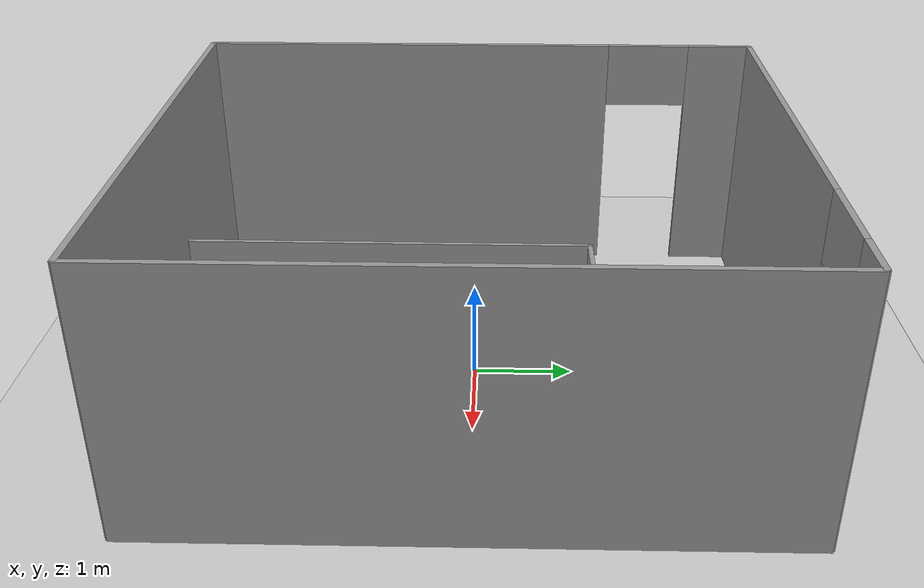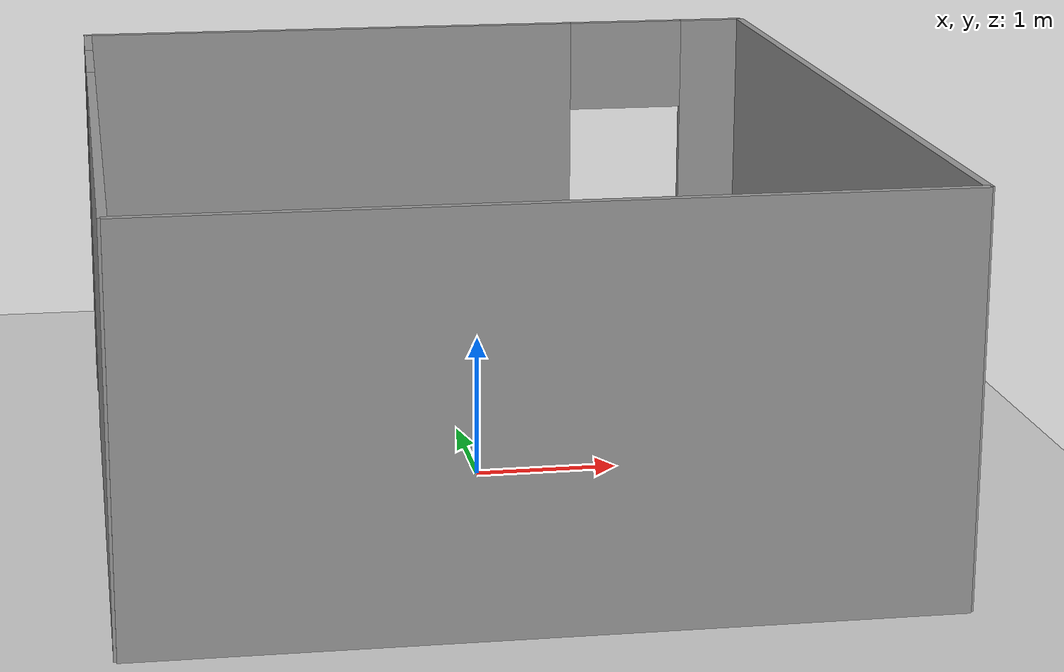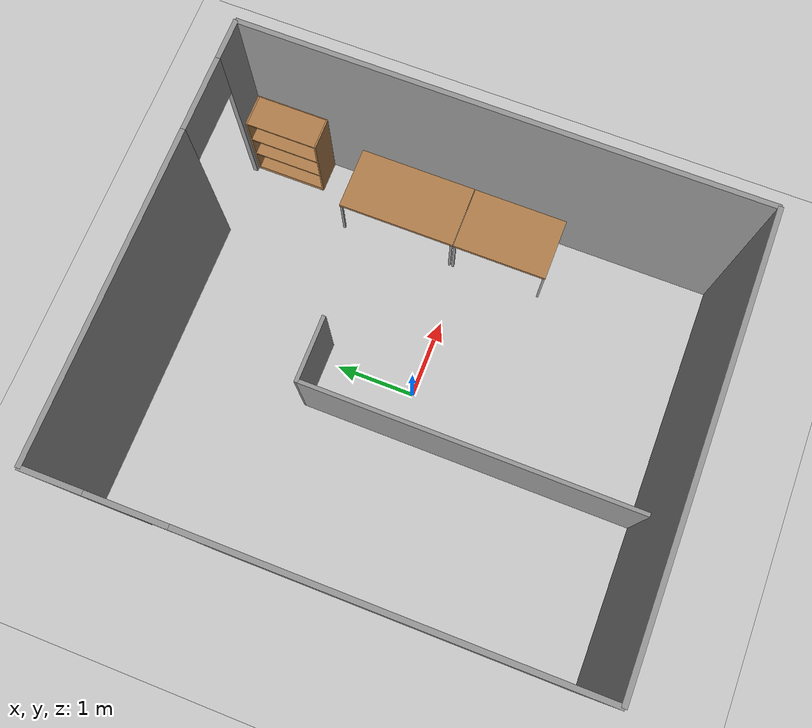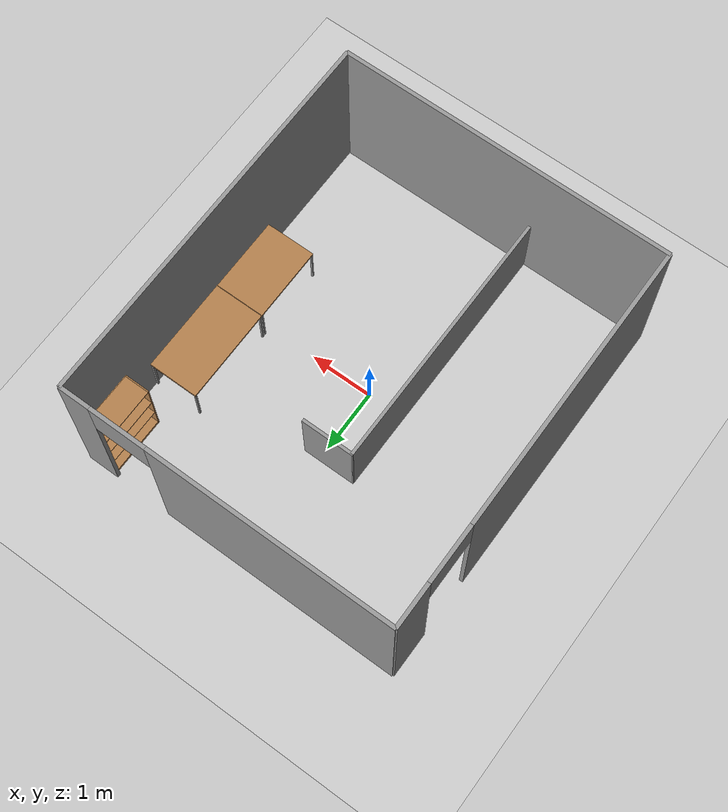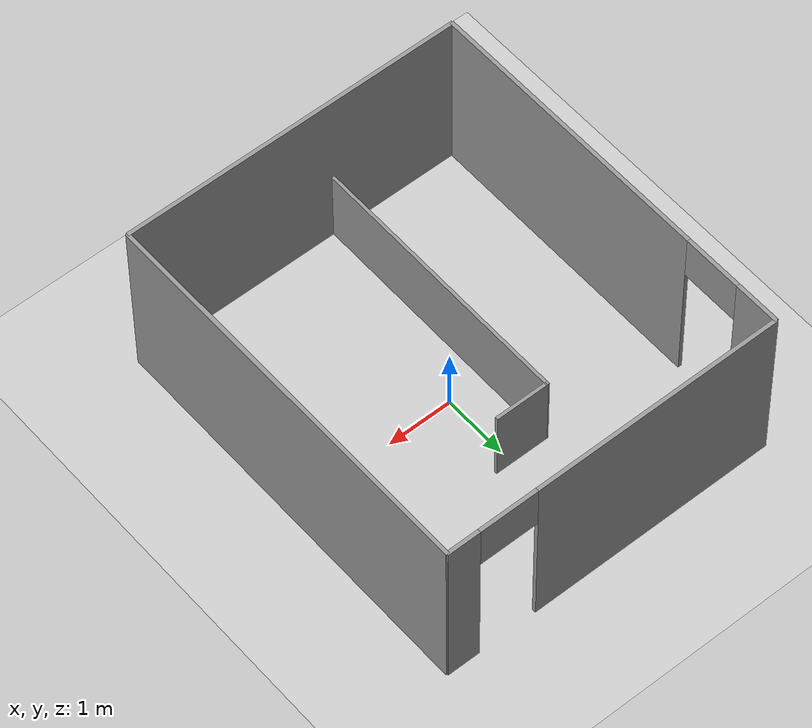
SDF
<sdf version="1.7">
 <world name="default">
  <model name="ground_plane">
   <static>1</static>
   <link name="link">
    <collision name="collision">
     <geometry><plane><normal>0 0 1</normal><size>100 100</size></plane></geometry>
     <surface>
      <contact><collide_bitmask>65535</collide_bitmask></contact>
      <friction><ode><mu>100</mu><mu2>50</mu2></ode></friction>
     </surface>
    </collision>
    <visual name="visual">
     <cast_shadows>0</cast_shadows>
     <geometry><plane><normal>0 0 1</normal><size>100 100</size></plane></geometry>
     <material>
      <script><uri>file://media/materials/scripts/gazebo.material</uri><name>Gazebo/Grey</name></script>
     </material>
    </visual>
   </link>
  </model>
  <model name="bookshelf_0">
   <static>1</static>
   <link name="link">
    <inertial><mass>1</mass></inertial>
    <collision name="back">
     <pose>0 0.005 0.6 0 -0 0</pose>
     <geometry><box><size>0.9 0.01 1.2</size></box></geometry>
    </collision>
    <visual name="visual1">
     <pose>0 0.005 0.6 0 -0 0</pose>
     <geometry><box><size>0.9 0.01 1.2</size></box></geometry>
     <material>
      <script><uri>file://media/materials/scripts/gazebo.material</uri><name>Gazebo/Wood</name></script>
     </material>
    </visual>
    <collision name="left_side">
     <pose>0.45 -0.195 0.6 0 -0 0</pose>
     <geometry><box><size>0.02 0.4 1.2</size></box></geometry>
    </collision>
    <visual name="visual2">
     <pose>0.45 -0.195 0.6 0 -0 0</pose>
     <geometry><box><size>0.02 0.4 1.2</size></box></geometry>
     <material>
      <script><uri>file://media/materials/scripts/gazebo.material</uri><name>Gazebo/Wood</name></script>
     </material>
    </visual>
    <collision name="right_side">
     <pose>-0.45 -0.195 0.6 0 -0 0</pose>
     <geometry><box><size>0.02 0.4 1.2</size></box></geometry>
    </collision>
    <visual name="visual3">
     <pose>-0.45 -0.195 0.6 0 -0 0</pose>
     <geometry><box><size>0.02 0.4 1.2</size></box></geometry>
     <material>
      <script><uri>file://media/materials/scripts/gazebo.material</uri><name>Gazebo/Wood</name></script>
     </material>
    </visual>
    <collision name="bottom">
     <pose>0 -0.195 0.03 0 -0 0</pose>
     <geometry><box><size>0.88 0.4 0.06</size></box></geometry>
    </collision>
    <visual name="visual4">
     <pose>0 -0.195 0.03 0 -0 0</pose>
     <geometry><box><size>0.88 0.4 0.06</size></box></geometry>
     <material>
      <script><uri>file://media/materials/scripts/gazebo.material</uri><name>Gazebo/Wood</name></script>
     </material>
    </visual>
    <collision name="top">
     <pose>0 -0.195 1.19 0 -0 0</pose>
     <geometry><box><size>0.88 0.4 0.02</size></box></geometry>
    </collision>
    <visual name="visual5">
     <pose>0 -0.195 1.19 0 -0 0</pose>
     <geometry><box><size>0.88 0.4 0.02</size></box></geometry>
     <material>
      <script><uri>file://media/materials/scripts/gazebo.material</uri><name>Gazebo/Wood</name></script>
     </material>
    </visual>
    <collision name="low_shelf">
     <pose>0 -0.195 0.43 0 -0 0</pose>
     <geometry><box><size>0.88 0.4 0.02</size></box></geometry>
    </collision>
    <visual name="visual6">
     <pose>0 -0.195 0.43 0 -0 0</pose>
     <geometry><box><size>0.88 0.4 0.02</size></box></geometry>
     <material>
      <script><uri>file://media/materials/scripts/gazebo.material</uri><name>Gazebo/Wood</name></script>
     </material>
    </visual>
    <collision name="high_shelf">
     <pose>0 -0.195 0.8 0 -0 0</pose>
     <geometry><box><size>0.88 0.4 0.02</size></box></geometry>
    </collision>
    <visual name="visual7">
     <pose>0 -0.195 0.8 0 -0 0</pose>
     <geometry><box><size>0.88 0.4 0.02</size></box></geometry>
     <material>
      <script><uri>file://media/materials/scripts/gazebo.material</uri><name>Gazebo/Wood</name></script>
     </material>
    </visual>
   </link>
   <pose>2.56895 2.55244 0 0 0 -1.5707</pose>
  </model>
  <model name="IRAC">
   <link name="Wall_0">
    <pose>-2.61 0.007537 0 0 -0 1.5708</pose>
    <inertial>
     <mass>1</mass>
     <inertia><ixx>1</ixx><ixy>0</ixy><ixz>0</ixz><iyy>1</iyy><iyz>0</iyz><izz>1</izz></inertia>
    </inertial>
    <visual name="Wall_0_Visual_0">
     <pose>-0.79786 0 1.35 0 -0 0</pose>
     <geometry><box><size>4.52428 0.06 2.7</size></box></geometry>
     <material>
      <script><uri>file://media/materials/scripts/gazebo.material</uri><name>Gazebo/Grey</name></script>
      <ambient>1 1 1 1</ambient>
      <shader type="pixel"><normal_map>__default__</normal_map></shader>
      <diffuse>0.7 0.7 0.7 1</diffuse>
      <specular>0.01 0.01 0.01 1</specular>
      <emissive>0 0 0 1</emissive>
     </material>
     <meta><layer>0</layer></meta>
    </visual>
    <visual name="Wall_0_Visual_1">
     <pose>2.71214 0 1.35 0 -0 0</pose>
     <geometry><box><size>0.695721 0.06 2.7</size></box></geometry>
     <material>
      <script><uri>file://media/materials/scripts/gazebo.material</uri><name>Gazebo/Grey</name></script>
      <ambient>1 1 1 1</ambient>
      <shader type="pixel"><normal_map>__default__</normal_map></shader>
      <diffuse>0.7 0.7 0.7 1</diffuse>
      <specular>0.01 0.01 0.01 1</specular>
      <emissive>0 0 0 1</emissive>
     </material>
     <meta><layer>0</layer></meta>
    </visual>
    <visual name="Wall_0_Visual_2">
     <pose>1.91428 0 2.35 0 -0 0</pose>
     <geometry><box><size>0.9 0.06 0.7</size></box></geometry>
     <material>
      <script><uri>file://media/materials/scripts/gazebo.material</uri><name>Gazebo/Grey</name></script>
      <ambient>1 1 1 1</ambient>
      <shader type="pixel"><normal_map>__default__</normal_map></shader>
      <diffuse>0.7 0.7 0.7 1</diffuse>
      <specular>0.01 0.01 0.01 1</specular>
      <emissive>0 0 0 1</emissive>
     </material>
     <meta><layer>0</layer></meta>
    </visual>
    <collision name="Wall_0_Collision_0">
     <pose>-0.79786 0 1.35 0 -0 0</pose>
     <geometry><box><size>4.52428 0.06 2.7</size></box></geometry>
     <surface>
      <friction>
       <ode><mu>1</mu><mu2>1</mu2><fdir1>0 0 0</fdir1><slip1>0</slip1><slip2>0</slip2></ode>
       <torsional>
        <coefficient>1</coefficient>
        <patch_radius>0</patch_radius>
        <surface_radius>0</surface_radius>
        <use_patch_radius>1</use_patch_radius>
        <ode><slip>0</slip></ode>
       </torsional>
      </friction>
      <bounce><restitution_coefficient>0</restitution_coefficient><threshold>1e+06</threshold></bounce>
      <contact>
       <collide_without_contact>0</collide_without_contact>
       <collide_without_contact_bitmask>1</collide_without_contact_bitmask>
       <collide_bitmask>1</collide_bitmask>
       <ode>
        <soft_cfm>0</soft_cfm>
        <soft_erp>0.2</soft_erp>
        <kp>1e+13</kp>
        <kd>1</kd>
        <max_vel>0.01</max_vel>
        <min_depth>0</min_depth>
       </ode>
       <bullet>
        <split_impulse>1</split_impulse>
        <split_impulse_penetration_threshold>-0.01</split_impulse_penetration_threshold>
        <soft_cfm>0</soft_cfm>
        <soft_erp>0.2</soft_erp>
        <kp>1e+13</kp>
        <kd>1</kd>
       </bullet>
      </contact>
     </surface>
    </collision>
    <collision name="Wall_0_Collision_2">
     <pose>1.91428 0 2.35 0 -0 0</pose>
     <geometry><box><size>0.9 0.06 0.7</size></box></geometry>
     <surface>
      <friction>
       <ode><mu>1</mu><mu2>1</mu2><fdir1>0 0 0</fdir1><slip1>0</slip1><slip2>0</slip2></ode>
       <torsional>
        <coefficient>1</coefficient>
        <patch_radius>0</patch_radius>
        <surface_radius>0</surface_radius>
        <use_patch_radius>1</use_patch_radius>
        <ode><slip>0</slip></ode>
       </torsional>
      </friction>
      <bounce><restitution_coefficient>0</restitution_coefficient><threshold>1e+06</threshold></bounce>
      <contact>
       <collide_without_contact>0</collide_without_contact>
       <collide_without_contact_bitmask>1</collide_without_contact_bitmask>
       <collide_bitmask>1</collide_bitmask>
       <ode>
        <soft_cfm>0</soft_cfm>
        <soft_erp>0.2</soft_erp>
        <kp>1e+13</kp>
        <kd>1</kd>
        <max_vel>0.01</max_vel>
        <min_depth>0</min_depth>
       </ode>
       <bullet>
        <split_impulse>1</split_impulse>
        <split_impulse_penetration_threshold>-0.01</split_impulse_penetration_threshold>
        <soft_cfm>0</soft_cfm>
        <soft_erp>0.2</soft_erp>
        <kp>1e+13</kp>
        <kd>1</kd>
       </bullet>
      </contact>
     </surface>
    </collision>
    <collision name="Wall_0_Collision_1">
     <pose>2.71214 0 1.35 0 -0 0</pose>
     <geometry><box><size>0.695721 0.06 2.7</size></box></geometry>
     <surface>
      <friction>
       <ode><mu>1</mu><mu2>1</mu2><fdir1>0 0 0</fdir1><slip1>0</slip1><slip2>0</slip2></ode>
       <torsional>
        <coefficient>1</coefficient>
        <patch_radius>0</patch_radius>
        <surface_radius>0</surface_radius>
        <use_patch_radius>1</use_patch_radius>
        <ode><slip>0</slip></ode>
       </torsional>
      </friction>
      <bounce><restitution_coefficient>0</restitution_coefficient><threshold>1e+06</threshold></bounce>
      <contact>
       <collide_without_contact>0</collide_without_contact>
       <collide_without_contact_bitmask>1</collide_without_contact_bitmask>
       <collide_bitmask>1</collide_bitmask>
       <ode>
        <soft_cfm>0</soft_cfm>
        <soft_erp>0.2</soft_erp>
        <kp>1e+13</kp>
        <kd>1</kd>
        <max_vel>0.01</max_vel>
        <min_depth>0</min_depth>
       </ode>
       <bullet>
        <split_impulse>1</split_impulse>
        <split_impulse_penetration_threshold>-0.01</split_impulse_penetration_threshold>
        <soft_cfm>0</soft_cfm>
        <soft_erp>0.2</soft_erp>
        <kp>1e+13</kp>
        <kd>1</kd>
       </bullet>
      </contact>
     </surface>
    </collision>
   </link>
   <link name="Wall_11">
    <pose>-0.5825 -0.922463 0 0 -0 1.56726</pose>
    <visual name="Wall_11_Visual">
     <pose>0 0 0.6 0 -0 0</pose>
     <geometry><box><size>4.29 0.05 1.2</size></box></geometry>
     <material>
      <script><uri>file://media/materials/scripts/gazebo.material</uri><name>Gazebo/Grey</name></script>
      <ambient>1 1 1 1</ambient>
      <shader type="pixel"/>
     </material>
     <meta><layer>0</layer></meta>
    </visual>
    <collision name="Wall_11_Collision">
     <pose>0 0 0.6 0 -0 0</pose>
     <geometry><box><size>4.29 0.05 1.2</size></box></geometry>
     <surface>
      <friction>
       <ode><mu>1</mu><mu2>1</mu2><fdir1>0 0 0</fdir1><slip1>0</slip1><slip2>0</slip2></ode>
       <torsional>
        <coefficient>1</coefficient>
        <patch_radius>0</patch_radius>
        <surface_radius>0</surface_radius>
        <use_patch_radius>1</use_patch_radius>
        <ode><slip>0</slip></ode>
       </torsional>
      </friction>
      <bounce><restitution_coefficient>0</restitution_coefficient><threshold>1e+06</threshold></bounce>
      <contact>
       <collide_without_contact>0</collide_without_contact>
       <collide_without_contact_bitmask>1</collide_without_contact_bitmask>
       <collide_bitmask>1</collide_bitmask>
       <ode>
        <soft_cfm>0</soft_cfm>
        <soft_erp>0.2</soft_erp>
        <kp>1e+13</kp>
        <kd>1</kd>
        <max_vel>0.01</max_vel>
        <min_depth>0</min_depth>
       </ode>
       <bullet>
        <split_impulse>1</split_impulse>
        <split_impulse_penetration_threshold>-0.01</split_impulse_penetration_threshold>
        <soft_cfm>0</soft_cfm>
        <soft_erp>0.2</soft_erp>
        <kp>1e+13</kp>
        <kd>1</kd>
       </bullet>
      </contact>
     </surface>
    </collision>
   </link>
   <link name="Wall_13">
    <pose>-0.175 1.19754 0 0 -0 0</pose>
    <visual name="Wall_13_Visual">
     <pose>0 0 0.6 0 -0 0</pose>
     <geometry><box><size>0.85 0.05 1.2</size></box></geometry>
     <material>
      <script><uri>file://media/materials/scripts/gazebo.material</uri><name>Gazebo/Grey</name></script>
      <ambient>1 1 1 1</ambient>
      <shader type="pixel"/>
     </material>
     <meta><layer>0</layer></meta>
    </visual>
    <collision name="Wall_13_Collision">
     <pose>0 0 0.6 0 -0 0</pose>
     <geometry><box><size>0.85 0.05 1.2</size></box></geometry>
     <surface>
      <friction>
       <ode><mu>1</mu><mu2>1</mu2><fdir1>0 0 0</fdir1><slip1>0</slip1><slip2>0</slip2></ode>
       <torsional>
        <coefficient>1</coefficient>
        <patch_radius>0</patch_radius>
        <surface_radius>0</surface_radius>
        <use_patch_radius>1</use_patch_radius>
        <ode><slip>0</slip></ode>
       </torsional>
      </friction>
      <bounce><restitution_coefficient>0</restitution_coefficient><threshold>1e+06</threshold></bounce>
      <contact>
       <collide_without_contact>0</collide_without_contact>
       <collide_without_contact_bitmask>1</collide_without_contact_bitmask>
       <collide_bitmask>1</collide_bitmask>
       <ode>
        <soft_cfm>0</soft_cfm>
        <soft_erp>0.2</soft_erp>
        <kp>1e+13</kp>
        <kd>1</kd>
        <max_vel>0.01</max_vel>
        <min_depth>0</min_depth>
       </ode>
       <bullet>
        <split_impulse>1</split_impulse>
        <split_impulse_penetration_threshold>-0.01</split_impulse_penetration_threshold>
        <soft_cfm>0</soft_cfm>
        <soft_erp>0.2</soft_erp>
        <kp>1e+13</kp>
        <kd>1</kd>
       </bullet>
      </contact>
     </surface>
    </collision>
   </link>
   <link name="Wall_2">
    <pose>0 -3.04246 0 0 -0 0</pose>
    <inertial>
     <mass>1</mass>
     <inertia><ixx>1</ixx><ixy>0</ixy><ixz>0</ixz><iyy>1</iyy><iyz>0</iyz><izz>1</izz></inertia>
    </inertial>
    <visual name="Wall_2_Visual">
     <pose>0 0 1.35 0 -0 0</pose>
     <geometry><box><size>5.24 0.06 2.7</size></box></geometry>
     <material>
      <script><uri>file://media/materials/scripts/gazebo.material</uri><name>Gazebo/Grey</name></script>
      <ambient>1 1 1 1</ambient>
      <shader type="pixel"><normal_map>__default__</normal_map></shader>
      <diffuse>0.7 0.7 0.7 1</diffuse>
      <specular>0.01 0.01 0.01 1</specular>
      <emissive>0 0 0 1</emissive>
     </material>
     <meta><layer>0</layer></meta>
    </visual>
    <collision name="Wall_2_Collision">
     <pose>0 0 1.35 0 -0 0</pose>
     <geometry><box><size>5.24 0.06 2.7</size></box></geometry>
     <surface>
      <friction>
       <ode><mu>1</mu><mu2>1</mu2><fdir1>0 0 0</fdir1><slip1>0</slip1><slip2>0</slip2></ode>
       <torsional>
        <coefficient>1</coefficient>
        <patch_radius>0</patch_radius>
        <surface_radius>0</surface_radius>
        <use_patch_radius>1</use_patch_radius>
        <ode><slip>0</slip></ode>
       </torsional>
      </friction>
      <bounce><restitution_coefficient>0</restitution_coefficient><threshold>1e+06</threshold></bounce>
      <contact>
       <collide_without_contact>0</collide_without_contact>
       <collide_without_contact_bitmask>1</collide_without_contact_bitmask>
       <collide_bitmask>1</collide_bitmask>
       <ode>
        <soft_cfm>0</soft_cfm>
        <soft_erp>0.2</soft_erp>
        <kp>1e+13</kp>
        <kd>1</kd>
        <max_vel>0.01</max_vel>
        <min_depth>0</min_depth>
       </ode>
       <bullet>
        <split_impulse>1</split_impulse>
        <split_impulse_penetration_threshold>-0.01</split_impulse_penetration_threshold>
        <soft_cfm>0</soft_cfm>
        <soft_erp>0.2</soft_erp>
        <kp>1e+13</kp>
        <kd>1</kd>
       </bullet>
      </contact>
     </surface>
    </collision>
   </link>
   <link name="Wall_4">
    <pose>2.61 0.007537 0 0 -0 1.5708</pose>
    <inertial>
     <mass>1</mass>
     <inertia><ixx>1</ixx><ixy>0</ixy><ixz>0</ixz><iyy>1</iyy><iyz>0</iyz><izz>1</izz></inertia>
    </inertial>
    <visual name="Wall_4_Visual">
     <pose>0 0 1.35 0 -0 0</pose>
     <geometry><box><size>6.12 0.06 2.7</size></box></geometry>
     <material>
      <script><uri>file://media/materials/scripts/gazebo.material</uri><name>Gazebo/Grey</name></script>
      <ambient>1 1 1 1</ambient>
      <shader type="pixel"><normal_map>__default__</normal_map></shader>
      <diffuse>0.7 0.7 0.7 1</diffuse>
      <specular>0.01 0.01 0.01 1</specular>
      <emissive>0 0 0 1</emissive>
     </material>
     <meta><layer>0</layer></meta>
    </visual>
    <collision name="Wall_4_Collision">
     <pose>0 0 1.35 0 -0 0</pose>
     <geometry><box><size>6.12 0.06 2.7</size></box></geometry>
     <surface>
      <friction>
       <ode><mu>1</mu><mu2>1</mu2><fdir1>0 0 0</fdir1><slip1>0</slip1><slip2>0</slip2></ode>
       <torsional>
        <coefficient>1</coefficient>
        <patch_radius>0</patch_radius>
        <surface_radius>0</surface_radius>
        <use_patch_radius>1</use_patch_radius>
        <ode><slip>0</slip></ode>
       </torsional>
      </friction>
      <bounce><restitution_coefficient>0</restitution_coefficient><threshold>1e+06</threshold></bounce>
      <contact>
       <collide_without_contact>0</collide_without_contact>
       <collide_without_contact_bitmask>1</collide_without_contact_bitmask>
       <collide_bitmask>1</collide_bitmask>
       <ode>
        <soft_cfm>0</soft_cfm>
        <soft_erp>0.2</soft_erp>
        <kp>1e+13</kp>
        <kd>1</kd>
        <max_vel>0.01</max_vel>
        <min_depth>0</min_depth>
       </ode>
       <bullet>
        <split_impulse>1</split_impulse>
        <split_impulse_penetration_threshold>-0.01</split_impulse_penetration_threshold>
        <soft_cfm>0</soft_cfm>
        <soft_erp>0.2</soft_erp>
        <kp>1e+13</kp>
        <kd>1</kd>
       </bullet>
      </contact>
     </surface>
    </collision>
   </link>
   <link name="Wall_9">
    <pose>0 3.05754 0 0 -0 0</pose>
    <inertial>
     <mass>1</mass>
     <inertia><ixx>1</ixx><ixy>0</ixy><ixz>0</ixz><iyy>1</iyy><iyz>0</iyz><izz>1</izz></inertia>
    </inertial>
    <visual name="Wall_9_Visual_0">
     <pose>-0.699649 0 1.35 0 -0 0</pose>
     <geometry><box><size>3.8407 0.06 2.7</size></box></geometry>
     <material>
      <script><uri>file://media/materials/scripts/gazebo.material</uri><name>Gazebo/Grey</name></script>
      <ambient>1 1 1 1</ambient>
      <shader type="pixel"><normal_map>__default__</normal_map></shader>
      <diffuse>0.7 0.7 0.7 1</diffuse>
      <specular>0.01 0.01 0.01 1</specular>
      <emissive>0 0 0 1</emissive>
     </material>
     <meta><layer>0</layer></meta>
    </visual>
    <visual name="Wall_9_Visual_1">
     <pose>2.37035 0 1.35 0 -0 0</pose>
     <geometry><box><size>0.499297 0.06 2.7</size></box></geometry>
     <material>
      <script><uri>file://media/materials/scripts/gazebo.material</uri><name>Gazebo/Grey</name></script>
      <ambient>1 1 1 1</ambient>
      <shader type="pixel"><normal_map>__default__</normal_map></shader>
      <diffuse>0.7 0.7 0.7 1</diffuse>
      <specular>0.01 0.01 0.01 1</specular>
      <emissive>0 0 0 1</emissive>
     </material>
     <meta><layer>0</layer></meta>
    </visual>
    <visual name="Wall_9_Visual_2">
     <pose>1.6707 0 2.35 0 -0 0</pose>
     <geometry><box><size>0.9 0.06 0.7</size></box></geometry>
     <material>
      <script><uri>file://media/materials/scripts/gazebo.material</uri><name>Gazebo/Grey</name></script>
      <ambient>1 1 1 1</ambient>
      <shader type="pixel"><normal_map>__default__</normal_map></shader>
      <diffuse>0.7 0.7 0.7 1</diffuse>
      <specular>0.01 0.01 0.01 1</specular>
      <emissive>0 0 0 1</emissive>
     </material>
     <meta><layer>0</layer></meta>
    </visual>
    <collision name="Wall_9_Collision_0">
     <pose>-0.699649 0 1.35 0 -0 0</pose>
     <geometry><box><size>3.8407 0.06 2.7</size></box></geometry>
     <surface>
      <friction>
       <ode><mu>1</mu><mu2>1</mu2><fdir1>0 0 0</fdir1><slip1>0</slip1><slip2>0</slip2></ode>
       <torsional>
        <coefficient>1</coefficient>
        <patch_radius>0</patch_radius>
        <surface_radius>0</surface_radius>
        <use_patch_radius>1</use_patch_radius>
        <ode><slip>0</slip></ode>
       </torsional>
      </friction>
      <bounce><restitution_coefficient>0</restitution_coefficient><threshold>1e+06</threshold></bounce>
      <contact>
       <collide_without_contact>0</collide_without_contact>
       <collide_without_contact_bitmask>1</collide_without_contact_bitmask>
       <collide_bitmask>1</collide_bitmask>
       <ode>
        <soft_cfm>0</soft_cfm>
        <soft_erp>0.2</soft_erp>
        <kp>1e+13</kp>
        <kd>1</kd>
        <max_vel>0.01</max_vel>
        <min_depth>0</min_depth>
       </ode>
       <bullet>
        <split_impulse>1</split_impulse>
        <split_impulse_penetration_threshold>-0.01</split_impulse_penetration_threshold>
        <soft_cfm>0</soft_cfm>
        <soft_erp>0.2</soft_erp>
        <kp>1e+13</kp>
        <kd>1</kd>
       </bullet>
      </contact>
     </surface>
    </collision>
    <collision name="Wall_9_Collision_1">
     <pose>2.37035 0 1.35 0 -0 0</pose>
     <geometry><box><size>0.499297 0.06 2.7</size></box></geometry>
     <surface>
      <friction>
       <ode><mu>1</mu><mu2>1</mu2><fdir1>0 0 0</fdir1><slip1>0</slip1><slip2>0</slip2></ode>
       <torsional>
        <coefficient>1</coefficient>
        <patch_radius>0</patch_radius>
        <surface_radius>0</surface_radius>
        <use_patch_radius>1</use_patch_radius>
        <ode><slip>0</slip></ode>
       </torsional>
      </friction>
      <bounce><restitution_coefficient>0</restitution_coefficient><threshold>1e+06</threshold></bounce>
      <contact>
       <collide_without_contact>0</collide_without_contact>
       <collide_without_contact_bitmask>1</collide_without_contact_bitmask>
       <collide_bitmask>1</collide_bitmask>
       <ode>
        <soft_cfm>0</soft_cfm>
        <soft_erp>0.2</soft_erp>
        <kp>1e+13</kp>
        <kd>1</kd>
        <max_vel>0.01</max_vel>
        <min_depth>0</min_depth>
       </ode>
       <bullet>
        <split_impulse>1</split_impulse>
        <split_impulse_penetration_threshold>-0.01</split_impulse_penetration_threshold>
        <soft_cfm>0</soft_cfm>
        <soft_erp>0.2</soft_erp>
        <kp>1e+13</kp>
        <kd>1</kd>
       </bullet>
      </contact>
     </surface>
    </collision>
    <collision name="Wall_9_Collision_2">
     <pose>1.6707 0 2.35 0 -0 0</pose>
     <geometry><box><size>0.9 0.06 0.7</size></box></geometry>
     <surface>
      <friction>
       <ode><mu>1</mu><mu2>1</mu2><fdir1>0 0 0</fdir1><slip1>0</slip1><slip2>0</slip2></ode>
       <torsional>
        <coefficient>1</coefficient>
        <patch_radius>0</patch_radius>
        <surface_radius>0</surface_radius>
        <use_patch_radius>1</use_patch_radius>
        <ode><slip>0</slip></ode>
       </torsional>
      </friction>
      <bounce><restitution_coefficient>0</restitution_coefficient><threshold>1e+06</threshold></bounce>
      <contact>
       <collide_without_contact>0</collide_without_contact>
       <collide_without_contact_bitmask>1</collide_without_contact_bitmask>
       <collide_bitmask>1</collide_bitmask>
       <ode>
        <soft_cfm>0</soft_cfm>
        <soft_erp>0.2</soft_erp>
        <kp>1e+13</kp>
        <kd>1</kd>
        <max_vel>0.01</max_vel>
        <min_depth>0</min_depth>
       </ode>
       <bullet>
        <split_impulse>1</split_impulse>
        <split_impulse_penetration_threshold>-0.01</split_impulse_penetration_threshold>
        <soft_cfm>0</soft_cfm>
        <soft_erp>0.2</soft_erp>
        <kp>1e+13</kp>
        <kd>1</kd>
       </bullet>
      </contact>
     </surface>
    </collision>
   </link>
   <static>1</static>
   <pose>0 -0.007537 0 0 -0 0</pose>
  </model>
  <model name="table_short_clone_clone_0">
   <link name="link">
    <inertial>
     <mass>1</mass>
     <inertia><ixx>1</ixx><ixy>0</ixy><ixz>0</ixz><iyy>1</iyy><iyz>0</iyz><izz>1</izz></inertia>
    </inertial>
    <visual name="front_right_leg">
     <pose>0.58 -0.38 0.35 0 -0 0</pose>
     <geometry><box><size>0.03 0.03 0.7</size></box></geometry>
     <material>
      <script><uri>file://media/materials/scripts/gazebo.material</uri><name>Gazebo/Grey</name></script>
      <shader type="pixel"><normal_map>__default__</normal_map></shader>
      <ambient>0.3 0.3 0.3 1</ambient>
      <diffuse>0.7 0.7 0.7 1</diffuse>
      <specular>0.01 0.01 0.01 1</specular>
      <emissive>0 0 0 1</emissive>
     </material>
    </visual>
    <visual name="back_left_leg">
     <pose>-0.58 0.38 0.35 0 -0 0</pose>
     <geometry><box><size>0.03 0.03 0.7</size></box></geometry>
     <material>
      <script><uri>file://media/materials/scripts/gazebo.material</uri><name>Gazebo/Grey</name></script>
      <shader type="pixel"><normal_map>__default__</normal_map></shader>
      <ambient>0.3 0.3 0.3 1</ambient>
      <diffuse>0.7 0.7 0.7 1</diffuse>
      <specular>0.01 0.01 0.01 1</specular>
      <emissive>0 0 0 1</emissive>
     </material>
    </visual>
    <visual name="front_left_leg">
     <pose>0.58 0.38 0.35 0 -0 0</pose>
     <geometry><box><size>0.03 0.03 0.7</size></box></geometry>
     <material>
      <script><uri>file://media/materials/scripts/gazebo.material</uri><name>Gazebo/Grey</name></script>
      <shader type="pixel"><normal_map>__default__</normal_map></shader>
      <ambient>0.3 0.3 0.3 1</ambient>
      <diffuse>0.7 0.7 0.7 1</diffuse>
      <specular>0.01 0.01 0.01 1</specular>
      <emissive>0 0 0 1</emissive>
     </material>
    </visual>
    <visual name="back_right_leg">
     <pose>-0.58 -0.38 0.35 0 -0 0</pose>
     <geometry><box><size>0.03 0.03 0.7</size></box></geometry>
     <material>
      <script><uri>file://media/materials/scripts/gazebo.material</uri><name>Gazebo/Grey</name></script>
      <shader type="pixel"><normal_map>__default__</normal_map></shader>
      <ambient>0.3 0.3 0.3 1</ambient>
      <diffuse>0.7 0.7 0.7 1</diffuse>
      <specular>0.01 0.01 0.01 1</specular>
      <emissive>0 0 0 1</emissive>
     </material>
    </visual>
    <visual name="visual1">
     <pose>0 0 0.7 0 -0 0</pose>
     <geometry><box><size>1.2 0.8 0.04</size></box></geometry>
     <material>
      <script><uri>file://media/materials/scripts/gazebo.material</uri><name>Gazebo/Wood</name></script>
      <shader type="pixel"><normal_map>__default__</normal_map></shader>
      <ambient>1 1 1 1</ambient>
      <diffuse>1 1 1 1</diffuse>
      <specular>0.2 0.2 0.2 1</specular>
      <emissive>0 0 0 1</emissive>
     </material>
    </visual>
    <collision name="front_right_leg">
     <pose>0.58 -0.38 0.35 0 -0 0</pose>
     <geometry><box><size>0.03 0.03 0.7</size></box></geometry>
     <surface>
      <friction>
       <ode><mu>1</mu><mu2>1</mu2><fdir1>0 0 0</fdir1><slip1>0</slip1><slip2>0</slip2></ode>
       <torsional>
        <coefficient>1</coefficient>
        <patch_radius>0</patch_radius>
        <surface_radius>0</surface_radius>
        <use_patch_radius>1</use_patch_radius>
        <ode><slip>0</slip></ode>
       </torsional>
      </friction>
      <bounce><restitution_coefficient>0</restitution_coefficient><threshold>1e+06</threshold></bounce>
      <contact>
       <collide_without_contact>0</collide_without_contact>
       <collide_without_contact_bitmask>1</collide_without_contact_bitmask>
       <collide_bitmask>1</collide_bitmask>
       <ode>
        <soft_cfm>0</soft_cfm>
        <soft_erp>0.2</soft_erp>
        <kp>1e+13</kp>
        <kd>1</kd>
        <max_vel>0.01</max_vel>
        <min_depth>0</min_depth>
       </ode>
       <bullet>
        <split_impulse>1</split_impulse>
        <split_impulse_penetration_threshold>-0.01</split_impulse_penetration_threshold>
        <soft_cfm>0</soft_cfm>
        <soft_erp>0.2</soft_erp>
        <kp>1e+13</kp>
        <kd>1</kd>
       </bullet>
      </contact>
     </surface>
    </collision>
    <collision name="back_left_leg">
     <pose>-0.58 0.38 0.35 0 -0 0</pose>
     <geometry><box><size>0.03 0.03 0.7</size></box></geometry>
     <surface>
      <friction>
       <ode><mu>1</mu><mu2>1</mu2><fdir1>0 0 0</fdir1><slip1>0</slip1><slip2>0</slip2></ode>
       <torsional>
        <coefficient>1</coefficient>
        <patch_radius>0</patch_radius>
        <surface_radius>0</surface_radius>
        <use_patch_radius>1</use_patch_radius>
        <ode><slip>0</slip></ode>
       </torsional>
      </friction>
      <bounce><restitution_coefficient>0</restitution_coefficient><threshold>1e+06</threshold></bounce>
      <contact>
       <collide_without_contact>0</collide_without_contact>
       <collide_without_contact_bitmask>1</collide_without_contact_bitmask>
       <collide_bitmask>1</collide_bitmask>
       <ode>
        <soft_cfm>0</soft_cfm>
        <soft_erp>0.2</soft_erp>
        <kp>1e+13</kp>
        <kd>1</kd>
        <max_vel>0.01</max_vel>
        <min_depth>0</min_depth>
       </ode>
       <bullet>
        <split_impulse>1</split_impulse>
        <split_impulse_penetration_threshold>-0.01</split_impulse_penetration_threshold>
        <soft_cfm>0</soft_cfm>
        <soft_erp>0.2</soft_erp>
        <kp>1e+13</kp>
        <kd>1</kd>
       </bullet>
      </contact>
     </surface>
    </collision>
    <collision name="back_right_leg">
     <pose>-0.58 -0.38 0.35 0 -0 0</pose>
     <geometry><box><size>0.03 0.03 0.7</size></box></geometry>
     <surface>
      <friction>
       <ode><mu>1</mu><mu2>1</mu2><fdir1>0 0 0</fdir1><slip1>0</slip1><slip2>0</slip2></ode>
       <torsional>
        <coefficient>1</coefficient>
        <patch_radius>0</patch_radius>
        <surface_radius>0</surface_radius>
        <use_patch_radius>1</use_patch_radius>
        <ode><slip>0</slip></ode>
       </torsional>
      </friction>
      <bounce><restitution_coefficient>0</restitution_coefficient><threshold>1e+06</threshold></bounce>
      <contact>
       <collide_without_contact>0</collide_without_contact>
       <collide_without_contact_bitmask>1</collide_without_contact_bitmask>
       <collide_bitmask>1</collide_bitmask>
       <ode>
        <soft_cfm>0</soft_cfm>
        <soft_erp>0.2</soft_erp>
        <kp>1e+13</kp>
        <kd>1</kd>
        <max_vel>0.01</max_vel>
        <min_depth>0</min_depth>
       </ode>
       <bullet>
        <split_impulse>1</split_impulse>
        <split_impulse_penetration_threshold>-0.01</split_impulse_penetration_threshold>
        <soft_cfm>0</soft_cfm>
        <soft_erp>0.2</soft_erp>
        <kp>1e+13</kp>
        <kd>1</kd>
       </bullet>
      </contact>
     </surface>
    </collision>
    <collision name="surface">
     <pose>0 0 0.7 0 -0 0</pose>
     <geometry><box><size>1.2 0.8 0.04</size></box></geometry>
     <surface>
      <friction>
       <ode><mu>0.6</mu><mu2>0.6</mu2><fdir1>0 0 0</fdir1><slip1>0</slip1><slip2>0</slip2></ode>
       <torsional>
        <coefficient>1</coefficient>
        <patch_radius>0</patch_radius>
        <surface_radius>0</surface_radius>
        <use_patch_radius>1</use_patch_radius>
        <ode><slip>0</slip></ode>
       </torsional>
      </friction>
      <bounce><restitution_coefficient>0</restitution_coefficient><threshold>1e+06</threshold></bounce>
      <contact>
       <collide_without_contact>0</collide_without_contact>
       <collide_without_contact_bitmask>1</collide_without_contact_bitmask>
       <collide_bitmask>1</collide_bitmask>
       <ode>
        <soft_cfm>0</soft_cfm>
        <soft_erp>0.2</soft_erp>
        <kp>1e+13</kp>
        <kd>1</kd>
        <max_vel>0.01</max_vel>
        <min_depth>0</min_depth>
       </ode>
       <bullet>
        <split_impulse>1</split_impulse>
        <split_impulse_penetration_threshold>-0.01</split_impulse_penetration_threshold>
        <soft_cfm>0</soft_cfm>
        <soft_erp>0.2</soft_erp>
        <kp>1e+13</kp>
        <kd>1</kd>
       </bullet>
      </contact>
     </surface>
    </collision>
    <collision name="front_left_leg">
     <pose>0.58 0.38 0.35 0 -0 0</pose>
     <geometry><box><size>0.03 0.03 0.699999</size></box></geometry>
     <surface>
      <friction>
       <ode><mu>1</mu><mu2>1</mu2><fdir1>0 0 0</fdir1><slip1>0</slip1><slip2>0</slip2></ode>
       <torsional>
        <coefficient>1</coefficient>
        <patch_radius>0</patch_radius>
        <surface_radius>0</surface_radius>
        <use_patch_radius>1</use_patch_radius>
        <ode><slip>0</slip></ode>
       </torsional>
      </friction>
      <bounce><restitution_coefficient>0</restitution_coefficient><threshold>1e+06</threshold></bounce>
      <contact>
       <collide_without_contact>0</collide_without_contact>
       <collide_without_contact_bitmask>1</collide_without_contact_bitmask>
       <collide_bitmask>1</collide_bitmask>
       <ode>
        <soft_cfm>0</soft_cfm>
        <soft_erp>0.2</soft_erp>
        <kp>1e+13</kp>
        <kd>1</kd>
        <max_vel>0.01</max_vel>
        <min_depth>0</min_depth>
       </ode>
       <bullet>
        <split_impulse>1</split_impulse>
        <split_impulse_penetration_threshold>-0.01</split_impulse_penetration_threshold>
        <soft_cfm>0</soft_cfm>
        <soft_erp>0.2</soft_erp>
        <kp>1e+13</kp>
        <kd>1</kd>
       </bullet>
      </contact>
     </surface>
    </collision>
   </link>
   <static>1</static>
   <pose>2.1757 -0.449844 0 0 -0 1.57</pose>
  </model>
  <model name="table_long_clone_clone_0">
   <link name="link">
    <inertial>
     <mass>1</mass>
     <inertia><ixx>1</ixx><ixy>0</ixy><ixz>0</ixz><iyy>1</iyy><iyz>0</iyz><izz>1</izz></inertia>
    </inertial>
    <visual name="front_left_leg">
     <pose>0.73 0.38 0.35 0 -0 0</pose>
     <geometry><box><size>0.03 0.03 0.7</size></box></geometry>
     <material>
      <script><uri>file://media/materials/scripts/gazebo.material</uri><name>Gazebo/Grey</name></script>
      <shader type="pixel"><normal_map>__default__</normal_map></shader>
      <ambient>0.3 0.3 0.3 1</ambient>
      <diffuse>0.7 0.7 0.7 1</diffuse>
      <specular>0.01 0.01 0.01 1</specular>
      <emissive>0 0 0 1</emissive>
     </material>
    </visual>
    <visual name="front_right_leg">
     <pose>0.73 -0.38 0.35 0 -0 0</pose>
     <geometry><box><size>0.03 0.03 0.7</size></box></geometry>
     <material>
      <script><uri>file://media/materials/scripts/gazebo.material</uri><name>Gazebo/Grey</name></script>
      <shader type="pixel"><normal_map>__default__</normal_map></shader>
      <ambient>0.3 0.3 0.3 1</ambient>
      <diffuse>0.7 0.7 0.7 1</diffuse>
      <specular>0.01 0.01 0.01 1</specular>
      <emissive>0 0 0 1</emissive>
     </material>
    </visual>
    <visual name="visual1">
     <pose>0 0 0.7 0 -0 0</pose>
     <geometry><box><size>1.5 0.8 0.04</size></box></geometry>
     <material>
      <script><uri>file://media/materials/scripts/gazebo.material</uri><name>Gazebo/Wood</name></script>
      <shader type="pixel"><normal_map>__default__</normal_map></shader>
      <ambient>1 1 1 1</ambient>
      <diffuse>1 1 1 1</diffuse>
      <specular>0.2 0.2 0.2 1</specular>
      <emissive>0 0 0 1</emissive>
     </material>
    </visual>
    <visual name="back_right_leg">
     <pose>-0.73 -0.38 0.35 0 -0 0</pose>
     <geometry><box><size>0.03 0.03 0.7</size></box></geometry>
     <material>
      <script><uri>file://media/materials/scripts/gazebo.material</uri><name>Gazebo/Grey</name></script>
      <shader type="pixel"><normal_map>__default__</normal_map></shader>
      <ambient>0.3 0.3 0.3 1</ambient>
      <diffuse>0.7 0.7 0.7 1</diffuse>
      <specular>0.01 0.01 0.01 1</specular>
      <emissive>0 0 0 1</emissive>
     </material>
    </visual>
    <visual name="back_left_leg">
     <pose>-0.73 0.38 0.35 0 -0 0</pose>
     <geometry><box><size>0.03 0.03 0.7</size></box></geometry>
     <material>
      <script><uri>file://media/materials/scripts/gazebo.material</uri><name>Gazebo/Grey</name></script>
      <shader type="pixel"><normal_map>__default__</normal_map></shader>
      <ambient>0.3 0.3 0.3 1</ambient>
      <diffuse>0.7 0.7 0.7 1</diffuse>
      <specular>0.01 0.01 0.01 1</specular>
      <emissive>0 0 0 1</emissive>
     </material>
    </visual>
    <collision name="front_right_leg">
     <pose>0.73 -0.38 0.35 0 -0 0</pose>
     <geometry><box><size>0.03 0.03 0.7</size></box></geometry>
     <surface>
      <friction>
       <ode><mu>1</mu><mu2>1</mu2><fdir1>0 0 0</fdir1><slip1>0</slip1><slip2>0</slip2></ode>
       <torsional>
        <coefficient>1</coefficient>
        <patch_radius>0</patch_radius>
        <surface_radius>0</surface_radius>
        <use_patch_radius>1</use_patch_radius>
        <ode><slip>0</slip></ode>
       </torsional>
      </friction>
      <bounce><restitution_coefficient>0</restitution_coefficient><threshold>1e+06</threshold></bounce>
      <contact>
       <collide_without_contact>0</collide_without_contact>
       <collide_without_contact_bitmask>1</collide_without_contact_bitmask>
       <collide_bitmask>1</collide_bitmask>
       <ode>
        <soft_cfm>0</soft_cfm>
        <soft_erp>0.2</soft_erp>
        <kp>1e+13</kp>
        <kd>1</kd>
        <max_vel>0.01</max_vel>
        <min_depth>0</min_depth>
       </ode>
       <bullet>
        <split_impulse>1</split_impulse>
        <split_impulse_penetration_threshold>-0.01</split_impulse_penetration_threshold>
        <soft_cfm>0</soft_cfm>
        <soft_erp>0.2</soft_erp>
        <kp>1e+13</kp>
        <kd>1</kd>
       </bullet>
      </contact>
     </surface>
    </collision>
    <collision name="front_left_leg">
     <pose>0.73 0.38 0.35 0 -0 0</pose>
     <geometry><box><size>0.03 0.03 0.699999</size></box></geometry>
     <surface>
      <friction>
       <ode><mu>1</mu><mu2>1</mu2><fdir1>0 0 0</fdir1><slip1>0</slip1><slip2>0</slip2></ode>
       <torsional>
        <coefficient>1</coefficient>
        <patch_radius>0</patch_radius>
        <surface_radius>0</surface_radius>
        <use_patch_radius>1</use_patch_radius>
        <ode><slip>0</slip></ode>
       </torsional>
      </friction>
      <bounce><restitution_coefficient>0</restitution_coefficient><threshold>1e+06</threshold></bounce>
      <contact>
       <collide_without_contact>0</collide_without_contact>
       <collide_without_contact_bitmask>1</collide_without_contact_bitmask>
       <collide_bitmask>1</collide_bitmask>
       <ode>
        <soft_cfm>0</soft_cfm>
        <soft_erp>0.2</soft_erp>
        <kp>1e+13</kp>
        <kd>1</kd>
        <max_vel>0.01</max_vel>
        <min_depth>0</min_depth>
       </ode>
       <bullet>
        <split_impulse>1</split_impulse>
        <split_impulse_penetration_threshold>-0.01</split_impulse_penetration_threshold>
        <soft_cfm>0</soft_cfm>
        <soft_erp>0.2</soft_erp>
        <kp>1e+13</kp>
        <kd>1</kd>
       </bullet>
      </contact>
     </surface>
    </collision>
    <collision name="back_right_leg">
     <pose>-0.73 -0.38 0.35 0 -0 0</pose>
     <geometry><box><size>0.03 0.03 0.7</size></box></geometry>
     <surface>
      <friction>
       <ode><mu>1</mu><mu2>1</mu2><fdir1>0 0 0</fdir1><slip1>0</slip1><slip2>0</slip2></ode>
       <torsional>
        <coefficient>1</coefficient>
        <patch_radius>0</patch_radius>
        <surface_radius>0</surface_radius>
        <use_patch_radius>1</use_patch_radius>
        <ode><slip>0</slip></ode>
       </torsional>
      </friction>
      <bounce><restitution_coefficient>0</restitution_coefficient><threshold>1e+06</threshold></bounce>
      <contact>
       <collide_without_contact>0</collide_without_contact>
       <collide_without_contact_bitmask>1</collide_without_contact_bitmask>
       <collide_bitmask>1</collide_bitmask>
       <ode>
        <soft_cfm>0</soft_cfm>
        <soft_erp>0.2</soft_erp>
        <kp>1e+13</kp>
        <kd>1</kd>
        <max_vel>0.01</max_vel>
        <min_depth>0</min_depth>
       </ode>
       <bullet>
        <split_impulse>1</split_impulse>
        <split_impulse_penetration_threshold>-0.01</split_impulse_penetration_threshold>
        <soft_cfm>0</soft_cfm>
        <soft_erp>0.2</soft_erp>
        <kp>1e+13</kp>
        <kd>1</kd>
       </bullet>
      </contact>
     </surface>
    </collision>
    <collision name="surface">
     <pose>0 0 0.7 0 -0 0</pose>
     <geometry><box><size>1.5 0.8 0.04</size></box></geometry>
     <surface>
      <friction>
       <ode><mu>0.6</mu><mu2>0.6</mu2><fdir1>0 0 0</fdir1><slip1>0</slip1><slip2>0</slip2></ode>
       <torsional>
        <coefficient>1</coefficient>
        <patch_radius>0</patch_radius>
        <surface_radius>0</surface_radius>
        <use_patch_radius>1</use_patch_radius>
        <ode><slip>0</slip></ode>
       </torsional>
      </friction>
      <bounce><restitution_coefficient>0</restitution_coefficient><threshold>1e+06</threshold></bounce>
      <contact>
       <collide_without_contact>0</collide_without_contact>
       <collide_without_contact_bitmask>1</collide_without_contact_bitmask>
       <collide_bitmask>1</collide_bitmask>
       <ode>
        <soft_cfm>0</soft_cfm>
        <soft_erp>0.2</soft_erp>
        <kp>1e+13</kp>
        <kd>1</kd>
        <max_vel>0.01</max_vel>
        <min_depth>0</min_depth>
       </ode>
       <bullet>
        <split_impulse>1</split_impulse>
        <split_impulse_penetration_threshold>-0.01</split_impulse_penetration_threshold>
        <soft_cfm>0</soft_cfm>
        <soft_erp>0.2</soft_erp>
        <kp>1e+13</kp>
        <kd>1</kd>
       </bullet>
      </contact>
     </surface>
    </collision>
    <collision name="back_left_leg">
     <pose>-0.73 0.38 0.35 0 -0 0</pose>
     <geometry><box><size>0.03 0.03 0.7</size></box></geometry>
     <surface>
      <friction>
       <ode><mu>1</mu><mu2>1</mu2><fdir1>0 0 0</fdir1><slip1>0</slip1><slip2>0</slip2></ode>
       <torsional>
        <coefficient>1</coefficient>
        <patch_radius>0</patch_radius>
        <surface_radius>0</surface_radius>
        <use_patch_radius>1</use_patch_radius>
        <ode><slip>0</slip></ode>
       </torsional>
      </friction>
      <bounce><restitution_coefficient>0</restitution_coefficient><threshold>1e+06</threshold></bounce>
      <contact>
       <collide_without_contact>0</collide_without_contact>
       <collide_without_contact_bitmask>1</collide_without_contact_bitmask>
       <collide_bitmask>1</collide_bitmask>
       <ode>
        <soft_cfm>0</soft_cfm>
        <soft_erp>0.2</soft_erp>
        <kp>1e+13</kp>
        <kd>1</kd>
        <max_vel>0.01</max_vel>
        <min_depth>0</min_depth>
       </ode>
       <bullet>
        <split_impulse>1</split_impulse>
        <split_impulse_penetration_threshold>-0.01</split_impulse_penetration_threshold>
        <soft_cfm>0</soft_cfm>
        <soft_erp>0.2</soft_erp>
        <kp>1e+13</kp>
        <kd>1</kd>
       </bullet>
      </contact>
     </surface>
    </collision>
   </link>
   <static>1</static>
   <pose>2.17809 0.90789 0 0 -0 1.57</pose>
  </model>
 </world>
</sdf>
